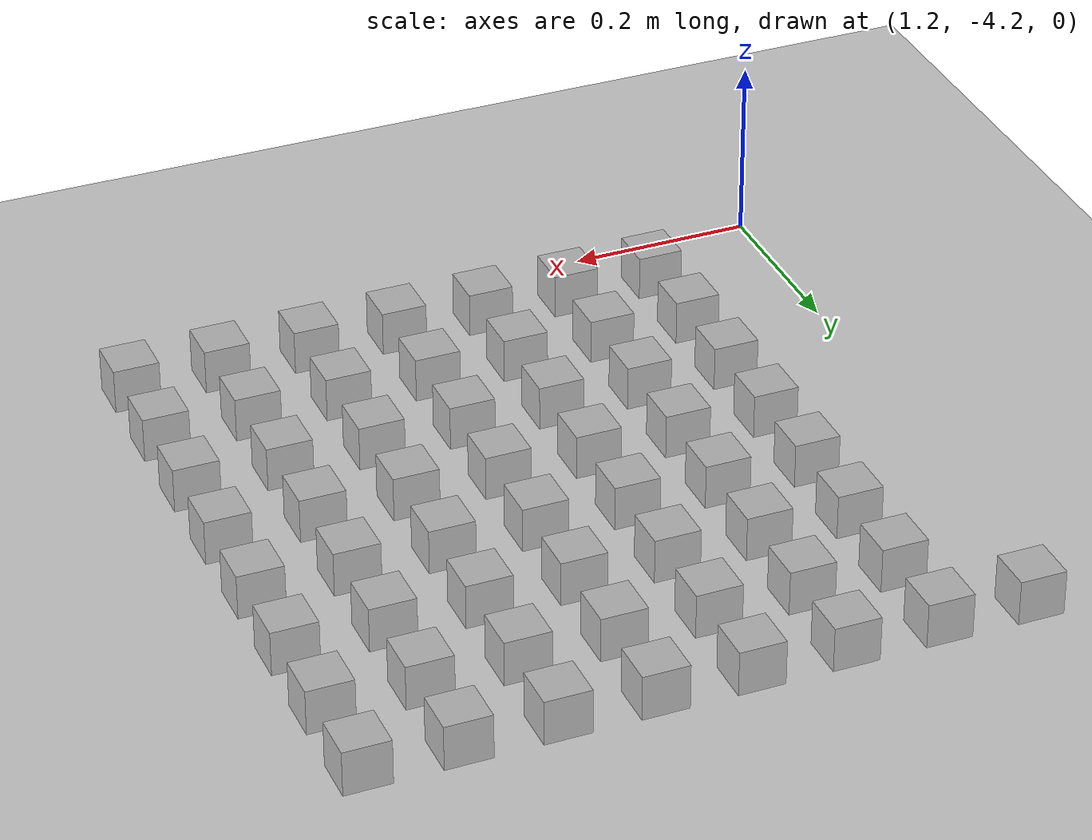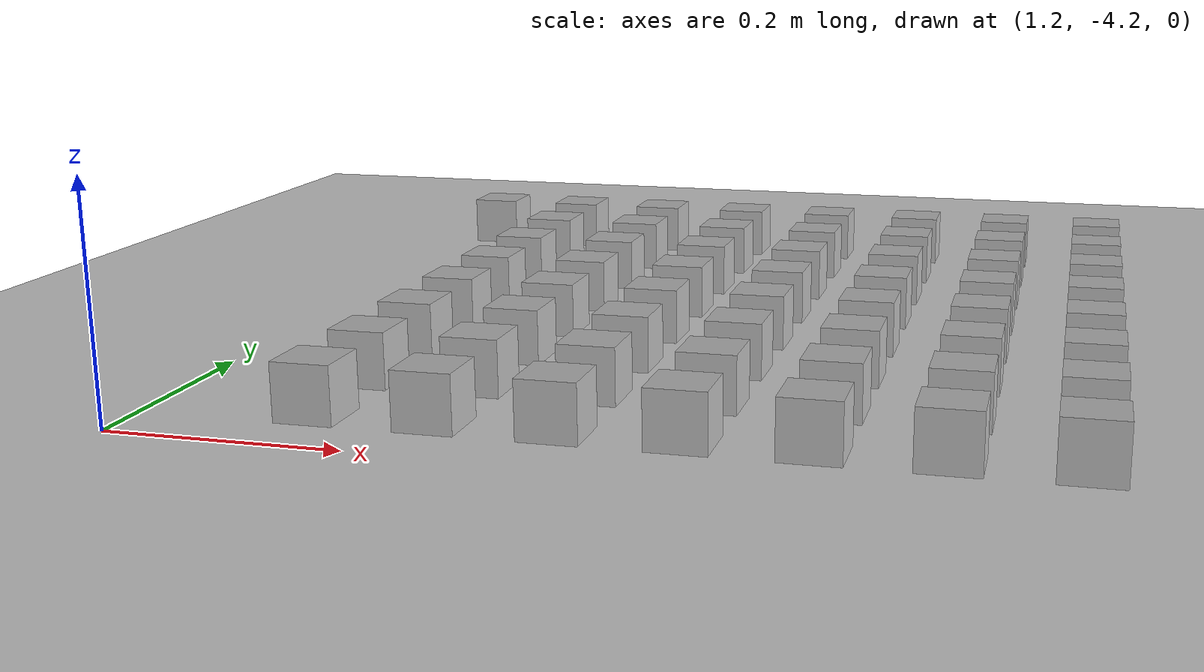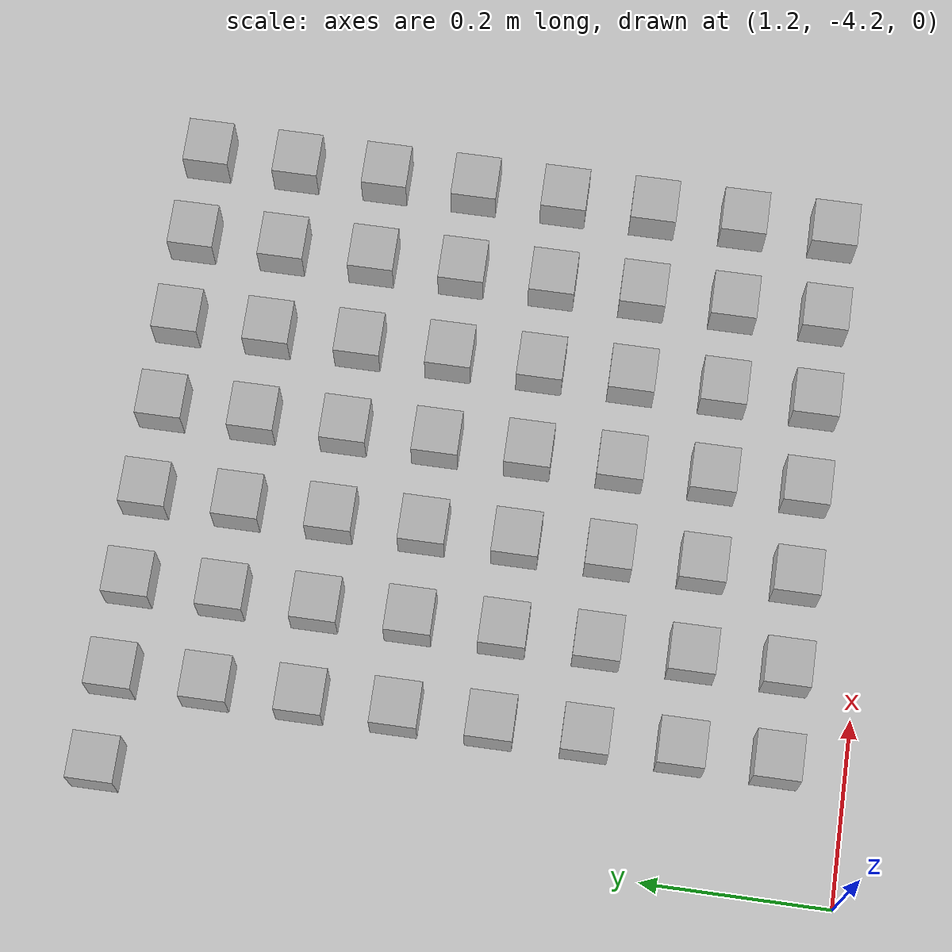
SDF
<sdf version="1.6">
 <world name="default">
  <model name="ground_plane">
   <static>1</static>
   <link name="link">
    <collision name="collision">
     <geometry><plane><normal>0 0 1</normal><size>100 100</size></plane></geometry>
     <surface><friction><ode><mu>100</mu><mu2>50</mu2></ode></friction></surface>
    </collision>
    <visual name="visual">
     <cast_shadows>0</cast_shadows>
     <geometry><plane><normal>0 0 1</normal><size>100 100</size></plane></geometry>
     <material>
      <script><uri>file://media/materials/scripts/gazebo.material</uri><name>Gazebo/Grey</name></script>
     </material>
    </visual>
   </link>
  </model>
  <model name="at193">
   <static>0</static>
   <link name="link">
    <inertial>
     <mass>0.01</mass>
     <inertia><ixx>4e-05</ixx><ixy>0</ixy><ixz>0</ixz><iyy>4e-05</iyy><iyz>0</iyz><izz>4e-05</izz></inertia>
    </inertial>
    <visual name="visual">
     <geometry><box><size>0.05 0.05 0.05</size></box></geometry>
     <material>
      <script>
       <uri>model://at0/materials/scripts</uri>
       <uri>model://at0/materials/textures</uri>
       <name>at0/Diffuse</name>
      </script>
     </material>
    </visual>
    <collision name="collision">
     <geometry><box><size>0.05 0.05 0.05</size></box></geometry>
     <surface><friction><ode><mu>0.8</mu><mu2>0.7</mu2></ode></friction></surface>
    </collision>
   </link>
   <pose>1.34324 -4.12605 0.025 0 -0 0</pose>
  </model>
  <model name="at194">
   <static>0</static>
   <link name="link">
    <inertial>
     <mass>0.01</mass>
     <inertia><ixx>4e-05</ixx><ixy>0</ixy><ixz>0</ixz><iyy>4e-05</iyy><iyz>0</iyz><izz>4e-05</izz></inertia>
    </inertial>
    <visual name="visual">
     <geometry><box><size>0.05 0.05 0.05</size></box></geometry>
     <material>
      <script>
       <uri>model://at0/materials/scripts</uri>
       <uri>model://at0/materials/textures</uri>
       <name>at0/Diffuse</name>
      </script>
     </material>
    </visual>
    <collision name="collision">
     <geometry><box><size>0.05 0.05 0.05</size></box></geometry>
     <surface><friction><ode><mu>0.8</mu><mu2>0.7</mu2></ode></friction></surface>
    </collision>
   </link>
   <pose>1.44324 -4.12605 0.025 0 -0 0</pose>
  </model>
  <model name="at195">
   <static>0</static>
   <link name="link">
    <inertial>
     <mass>0.01</mass>
     <inertia><ixx>4e-05</ixx><ixy>0</ixy><ixz>0</ixz><iyy>4e-05</iyy><iyz>0</iyz><izz>4e-05</izz></inertia>
    </inertial>
    <visual name="visual">
     <geometry><box><size>0.05 0.05 0.05</size></box></geometry>
     <material>
      <script>
       <uri>model://at0/materials/scripts</uri>
       <uri>model://at0/materials/textures</uri>
       <name>at0/Diffuse</name>
      </script>
     </material>
    </visual>
    <collision name="collision">
     <geometry><box><size>0.05 0.05 0.05</size></box></geometry>
     <surface><friction><ode><mu>0.8</mu><mu2>0.7</mu2></ode></friction></surface>
    </collision>
   </link>
   <pose>1.54324 -4.12605 0.025 0 -0 0</pose>
  </model>
  <model name="at196">
   <static>0</static>
   <link name="link">
    <inertial>
     <mass>0.01</mass>
     <inertia><ixx>4e-05</ixx><ixy>0</ixy><ixz>0</ixz><iyy>4e-05</iyy><iyz>0</iyz><izz>4e-05</izz></inertia>
    </inertial>
    <visual name="visual">
     <geometry><box><size>0.05 0.05 0.05</size></box></geometry>
     <material>
      <script>
       <uri>model://at0/materials/scripts</uri>
       <uri>model://at0/materials/textures</uri>
       <name>at0/Diffuse</name>
      </script>
     </material>
    </visual>
    <collision name="collision">
     <geometry><box><size>0.05 0.05 0.05</size></box></geometry>
     <surface><friction><ode><mu>0.8</mu><mu2>0.7</mu2></ode></friction></surface>
    </collision>
   </link>
   <pose>1.64324 -4.12605 0.025 0 -0 0</pose>
  </model>
  <model name="at197">
   <static>0</static>
   <link name="link">
    <inertial>
     <mass>0.01</mass>
     <inertia><ixx>4e-05</ixx><ixy>0</ixy><ixz>0</ixz><iyy>4e-05</iyy><iyz>0</iyz><izz>4e-05</izz></inertia>
    </inertial>
    <visual name="visual">
     <geometry><box><size>0.05 0.05 0.05</size></box></geometry>
     <material>
      <script>
       <uri>model://at0/materials/scripts</uri>
       <uri>model://at0/materials/textures</uri>
       <name>at0/Diffuse</name>
      </script>
     </material>
    </visual>
    <collision name="collision">
     <geometry><box><size>0.05 0.05 0.05</size></box></geometry>
     <surface><friction><ode><mu>0.8</mu><mu2>0.7</mu2></ode></friction></surface>
    </collision>
   </link>
   <pose>1.74324 -4.12605 0.025 0 -0 0</pose>
  </model>
  <model name="at198">
   <static>0</static>
   <link name="link">
    <inertial>
     <mass>0.01</mass>
     <inertia><ixx>4e-05</ixx><ixy>0</ixy><ixz>0</ixz><iyy>4e-05</iyy><iyz>0</iyz><izz>4e-05</izz></inertia>
    </inertial>
    <visual name="visual">
     <geometry><box><size>0.05 0.05 0.05</size></box></geometry>
     <material>
      <script>
       <uri>model://at0/materials/scripts</uri>
       <uri>model://at0/materials/textures</uri>
       <name>at0/Diffuse</name>
      </script>
     </material>
    </visual>
    <collision name="collision">
     <geometry><box><size>0.05 0.05 0.05</size></box></geometry>
     <surface><friction><ode><mu>0.8</mu><mu2>0.7</mu2></ode></friction></surface>
    </collision>
   </link>
   <pose>1.84324 -4.12605 0.025 0 -0 0</pose>
  </model>
  <model name="at199">
   <static>0</static>
   <link name="link">
    <inertial>
     <mass>0.01</mass>
     <inertia><ixx>4e-05</ixx><ixy>0</ixy><ixz>0</ixz><iyy>4e-05</iyy><iyz>0</iyz><izz>4e-05</izz></inertia>
    </inertial>
    <visual name="visual">
     <geometry><box><size>0.05 0.05 0.05</size></box></geometry>
     <material>
      <script>
       <uri>model://at0/materials/scripts</uri>
       <uri>model://at0/materials/textures</uri>
       <name>at0/Diffuse</name>
      </script>
     </material>
    </visual>
    <collision name="collision">
     <geometry><box><size>0.05 0.05 0.05</size></box></geometry>
     <surface><friction><ode><mu>0.8</mu><mu2>0.7</mu2></ode></friction></surface>
    </collision>
   </link>
   <pose>1.94324 -4.12605 0.025 0 -0 0</pose>
  </model>
  <model name="at201">
   <static>0</static>
   <link name="link">
    <inertial>
     <mass>0.01</mass>
     <inertia><ixx>4e-05</ixx><ixy>0</ixy><ixz>0</ixz><iyy>4e-05</iyy><iyz>0</iyz><izz>4e-05</izz></inertia>
    </inertial>
    <visual name="visual">
     <geometry><box><size>0.05 0.05 0.05</size></box></geometry>
     <material>
      <script>
       <uri>model://at0/materials/scripts</uri>
       <uri>model://at0/materials/textures</uri>
       <name>at0/Diffuse</name>
      </script>
     </material>
    </visual>
    <collision name="collision">
     <geometry><box><size>0.05 0.05 0.05</size></box></geometry>
     <surface><friction><ode><mu>0.8</mu><mu2>0.7</mu2></ode></friction></surface>
    </collision>
   </link>
   <pose>1.34324 -4.02605 0.025 0 -0 0</pose>
  </model>
  <model name="at202">
   <static>0</static>
   <link name="link">
    <inertial>
     <mass>0.01</mass>
     <inertia><ixx>4e-05</ixx><ixy>0</ixy><ixz>0</ixz><iyy>4e-05</iyy><iyz>0</iyz><izz>4e-05</izz></inertia>
    </inertial>
    <visual name="visual">
     <geometry><box><size>0.05 0.05 0.05</size></box></geometry>
     <material>
      <script>
       <uri>model://at0/materials/scripts</uri>
       <uri>model://at0/materials/textures</uri>
       <name>at0/Diffuse</name>
      </script>
     </material>
    </visual>
    <collision name="collision">
     <geometry><box><size>0.05 0.05 0.05</size></box></geometry>
     <surface><friction><ode><mu>0.8</mu><mu2>0.7</mu2></ode></friction></surface>
    </collision>
   </link>
   <pose>1.44324 -4.02605 0.025 0 -0 0</pose>
  </model>
  <model name="at203">
   <static>0</static>
   <link name="link">
    <inertial>
     <mass>0.01</mass>
     <inertia><ixx>4e-05</ixx><ixy>0</ixy><ixz>0</ixz><iyy>4e-05</iyy><iyz>0</iyz><izz>4e-05</izz></inertia>
    </inertial>
    <visual name="visual">
     <geometry><box><size>0.05 0.05 0.05</size></box></geometry>
     <material>
      <script>
       <uri>model://at0/materials/scripts</uri>
       <uri>model://at0/materials/textures</uri>
       <name>at0/Diffuse</name>
      </script>
     </material>
    </visual>
    <collision name="collision">
     <geometry><box><size>0.05 0.05 0.05</size></box></geometry>
     <surface><friction><ode><mu>0.8</mu><mu2>0.7</mu2></ode></friction></surface>
    </collision>
   </link>
   <pose>1.54324 -4.02605 0.025 0 -0 0</pose>
  </model>
  <model name="at204">
   <static>0</static>
   <link name="link">
    <inertial>
     <mass>0.01</mass>
     <inertia><ixx>4e-05</ixx><ixy>0</ixy><ixz>0</ixz><iyy>4e-05</iyy><iyz>0</iyz><izz>4e-05</izz></inertia>
    </inertial>
    <visual name="visual">
     <geometry><box><size>0.05 0.05 0.05</size></box></geometry>
     <material>
      <script>
       <uri>model://at0/materials/scripts</uri>
       <uri>model://at0/materials/textures</uri>
       <name>at0/Diffuse</name>
      </script>
     </material>
    </visual>
    <collision name="collision">
     <geometry><box><size>0.05 0.05 0.05</size></box></geometry>
     <surface><friction><ode><mu>0.8</mu><mu2>0.7</mu2></ode></friction></surface>
    </collision>
   </link>
   <pose>1.64324 -4.02605 0.025 0 -0 0</pose>
  </model>
  <model name="at205">
   <static>0</static>
   <link name="link">
    <inertial>
     <mass>0.01</mass>
     <inertia><ixx>4e-05</ixx><ixy>0</ixy><ixz>0</ixz><iyy>4e-05</iyy><iyz>0</iyz><izz>4e-05</izz></inertia>
    </inertial>
    <visual name="visual">
     <geometry><box><size>0.05 0.05 0.05</size></box></geometry>
     <material>
      <script>
       <uri>model://at0/materials/scripts</uri>
       <uri>model://at0/materials/textures</uri>
       <name>at0/Diffuse</name>
      </script>
     </material>
    </visual>
    <collision name="collision">
     <geometry><box><size>0.05 0.05 0.05</size></box></geometry>
     <surface><friction><ode><mu>0.8</mu><mu2>0.7</mu2></ode></friction></surface>
    </collision>
   </link>
   <pose>1.74324 -4.02605 0.025 0 -0 0</pose>
  </model>
  <model name="at206">
   <static>0</static>
   <link name="link">
    <inertial>
     <mass>0.01</mass>
     <inertia><ixx>4e-05</ixx><ixy>0</ixy><ixz>0</ixz><iyy>4e-05</iyy><iyz>0</iyz><izz>4e-05</izz></inertia>
    </inertial>
    <visual name="visual">
     <geometry><box><size>0.05 0.05 0.05</size></box></geometry>
     <material>
      <script>
       <uri>model://at0/materials/scripts</uri>
       <uri>model://at0/materials/textures</uri>
       <name>at0/Diffuse</name>
      </script>
     </material>
    </visual>
    <collision name="collision">
     <geometry><box><size>0.05 0.05 0.05</size></box></geometry>
     <surface><friction><ode><mu>0.8</mu><mu2>0.7</mu2></ode></friction></surface>
    </collision>
   </link>
   <pose>1.84324 -4.02605 0.025 0 -0 0</pose>
  </model>
  <model name="at207">
   <static>0</static>
   <link name="link">
    <inertial>
     <mass>0.01</mass>
     <inertia><ixx>4e-05</ixx><ixy>0</ixy><ixz>0</ixz><iyy>4e-05</iyy><iyz>0</iyz><izz>4e-05</izz></inertia>
    </inertial>
    <visual name="visual">
     <geometry><box><size>0.05 0.05 0.05</size></box></geometry>
     <material>
      <script>
       <uri>model://at0/materials/scripts</uri>
       <uri>model://at0/materials/textures</uri>
       <name>at0/Diffuse</name>
      </script>
     </material>
    </visual>
    <collision name="collision">
     <geometry><box><size>0.05 0.05 0.05</size></box></geometry>
     <surface><friction><ode><mu>0.8</mu><mu2>0.7</mu2></ode></friction></surface>
    </collision>
   </link>
   <pose>1.94324 -4.02605 0.025 0 -0 0</pose>
  </model>
  <model name="at209">
   <static>0</static>
   <link name="link">
    <inertial>
     <mass>0.01</mass>
     <inertia><ixx>4e-05</ixx><ixy>0</ixy><ixz>0</ixz><iyy>4e-05</iyy><iyz>0</iyz><izz>4e-05</izz></inertia>
    </inertial>
    <visual name="visual">
     <geometry><box><size>0.05 0.05 0.05</size></box></geometry>
     <material>
      <script>
       <uri>model://at0/materials/scripts</uri>
       <uri>model://at0/materials/textures</uri>
       <name>at0/Diffuse</name>
      </script>
     </material>
    </visual>
    <collision name="collision">
     <geometry><box><size>0.05 0.05 0.05</size></box></geometry>
     <surface><friction><ode><mu>0.8</mu><mu2>0.7</mu2></ode></friction></surface>
    </collision>
   </link>
   <pose>1.34324 -3.92605 0.025 0 -0 0</pose>
  </model>
  <model name="at210">
   <static>0</static>
   <link name="link">
    <inertial>
     <mass>0.01</mass>
     <inertia><ixx>4e-05</ixx><ixy>0</ixy><ixz>0</ixz><iyy>4e-05</iyy><iyz>0</iyz><izz>4e-05</izz></inertia>
    </inertial>
    <visual name="visual">
     <geometry><box><size>0.05 0.05 0.05</size></box></geometry>
     <material>
      <script>
       <uri>model://at0/materials/scripts</uri>
       <uri>model://at0/materials/textures</uri>
       <name>at0/Diffuse</name>
      </script>
     </material>
    </visual>
    <collision name="collision">
     <geometry><box><size>0.05 0.05 0.05</size></box></geometry>
     <surface><friction><ode><mu>0.8</mu><mu2>0.7</mu2></ode></friction></surface>
    </collision>
   </link>
   <pose>1.44324 -3.92605 0.025 0 -0 0</pose>
  </model>
  <model name="at211">
   <static>0</static>
   <link name="link">
    <inertial>
     <mass>0.01</mass>
     <inertia><ixx>4e-05</ixx><ixy>0</ixy><ixz>0</ixz><iyy>4e-05</iyy><iyz>0</iyz><izz>4e-05</izz></inertia>
    </inertial>
    <visual name="visual">
     <geometry><box><size>0.05 0.05 0.05</size></box></geometry>
     <material>
      <script>
       <uri>model://at0/materials/scripts</uri>
       <uri>model://at0/materials/textures</uri>
       <name>at0/Diffuse</name>
      </script>
     </material>
    </visual>
    <collision name="collision">
     <geometry><box><size>0.05 0.05 0.05</size></box></geometry>
     <surface><friction><ode><mu>0.8</mu><mu2>0.7</mu2></ode></friction></surface>
    </collision>
   </link>
   <pose>1.54324 -3.92605 0.025 0 -0 0</pose>
  </model>
  <model name="at212">
   <static>0</static>
   <link name="link">
    <inertial>
     <mass>0.01</mass>
     <inertia><ixx>4e-05</ixx><ixy>0</ixy><ixz>0</ixz><iyy>4e-05</iyy><iyz>0</iyz><izz>4e-05</izz></inertia>
    </inertial>
    <visual name="visual">
     <geometry><box><size>0.05 0.05 0.05</size></box></geometry>
     <material>
      <script>
       <uri>model://at0/materials/scripts</uri>
       <uri>model://at0/materials/textures</uri>
       <name>at0/Diffuse</name>
      </script>
     </material>
    </visual>
    <collision name="collision">
     <geometry><box><size>0.05 0.05 0.05</size></box></geometry>
     <surface><friction><ode><mu>0.8</mu><mu2>0.7</mu2></ode></friction></surface>
    </collision>
   </link>
   <pose>1.64324 -3.92605 0.025 0 -0 0</pose>
  </model>
  <model name="at213">
   <static>0</static>
   <link name="link">
    <inertial>
     <mass>0.01</mass>
     <inertia><ixx>4e-05</ixx><ixy>0</ixy><ixz>0</ixz><iyy>4e-05</iyy><iyz>0</iyz><izz>4e-05</izz></inertia>
    </inertial>
    <visual name="visual">
     <geometry><box><size>0.05 0.05 0.05</size></box></geometry>
     <material>
      <script>
       <uri>model://at0/materials/scripts</uri>
       <uri>model://at0/materials/textures</uri>
       <name>at0/Diffuse</name>
      </script>
     </material>
    </visual>
    <collision name="collision">
     <geometry><box><size>0.05 0.05 0.05</size></box></geometry>
     <surface><friction><ode><mu>0.8</mu><mu2>0.7</mu2></ode></friction></surface>
    </collision>
   </link>
   <pose>1.74324 -3.92605 0.025 0 -0 0</pose>
  </model>
  <model name="at214">
   <static>0</static>
   <link name="link">
    <inertial>
     <mass>0.01</mass>
     <inertia><ixx>4e-05</ixx><ixy>0</ixy><ixz>0</ixz><iyy>4e-05</iyy><iyz>0</iyz><izz>4e-05</izz></inertia>
    </inertial>
    <visual name="visual">
     <geometry><box><size>0.05 0.05 0.05</size></box></geometry>
     <material>
      <script>
       <uri>model://at0/materials/scripts</uri>
       <uri>model://at0/materials/textures</uri>
       <name>at0/Diffuse</name>
      </script>
     </material>
    </visual>
    <collision name="collision">
     <geometry><box><size>0.05 0.05 0.05</size></box></geometry>
     <surface><friction><ode><mu>0.8</mu><mu2>0.7</mu2></ode></friction></surface>
    </collision>
   </link>
   <pose>1.84324 -3.92605 0.025 0 -0 0</pose>
  </model>
  <model name="at215">
   <static>0</static>
   <link name="link">
    <inertial>
     <mass>0.01</mass>
     <inertia><ixx>4e-05</ixx><ixy>0</ixy><ixz>0</ixz><iyy>4e-05</iyy><iyz>0</iyz><izz>4e-05</izz></inertia>
    </inertial>
    <visual name="visual">
     <geometry><box><size>0.05 0.05 0.05</size></box></geometry>
     <material>
      <script>
       <uri>model://at0/materials/scripts</uri>
       <uri>model://at0/materials/textures</uri>
       <name>at0/Diffuse</name>
      </script>
     </material>
    </visual>
    <collision name="collision">
     <geometry><box><size>0.05 0.05 0.05</size></box></geometry>
     <surface><friction><ode><mu>0.8</mu><mu2>0.7</mu2></ode></friction></surface>
    </collision>
   </link>
   <pose>1.94324 -3.92605 0.025 0 -0 0</pose>
  </model>
  <model name="at217">
   <static>0</static>
   <link name="link">
    <inertial>
     <mass>0.01</mass>
     <inertia><ixx>4e-05</ixx><ixy>0</ixy><ixz>0</ixz><iyy>4e-05</iyy><iyz>0</iyz><izz>4e-05</izz></inertia>
    </inertial>
    <visual name="visual">
     <geometry><box><size>0.05 0.05 0.05</size></box></geometry>
     <material>
      <script>
       <uri>model://at0/materials/scripts</uri>
       <uri>model://at0/materials/textures</uri>
       <name>at0/Diffuse</name>
      </script>
     </material>
    </visual>
    <collision name="collision">
     <geometry><box><size>0.05 0.05 0.05</size></box></geometry>
     <surface><friction><ode><mu>0.8</mu><mu2>0.7</mu2></ode></friction></surface>
    </collision>
   </link>
   <pose>1.34324 -3.82605 0.025 0 -0 0</pose>
  </model>
  <model name="at218">
   <static>0</static>
   <link name="link">
    <inertial>
     <mass>0.01</mass>
     <inertia><ixx>4e-05</ixx><ixy>0</ixy><ixz>0</ixz><iyy>4e-05</iyy><iyz>0</iyz><izz>4e-05</izz></inertia>
    </inertial>
    <visual name="visual">
     <geometry><box><size>0.05 0.05 0.05</size></box></geometry>
     <material>
      <script>
       <uri>model://at0/materials/scripts</uri>
       <uri>model://at0/materials/textures</uri>
       <name>at0/Diffuse</name>
      </script>
     </material>
    </visual>
    <collision name="collision">
     <geometry><box><size>0.05 0.05 0.05</size></box></geometry>
     <surface><friction><ode><mu>0.8</mu><mu2>0.7</mu2></ode></friction></surface>
    </collision>
   </link>
   <pose>1.44324 -3.82605 0.025 0 -0 0</pose>
  </model>
  <model name="at219">
   <static>0</static>
   <link name="link">
    <inertial>
     <mass>0.01</mass>
     <inertia><ixx>4e-05</ixx><ixy>0</ixy><ixz>0</ixz><iyy>4e-05</iyy><iyz>0</iyz><izz>4e-05</izz></inertia>
    </inertial>
    <visual name="visual">
     <geometry><box><size>0.05 0.05 0.05</size></box></geometry>
     <material>
      <script>
       <uri>model://at0/materials/scripts</uri>
       <uri>model://at0/materials/textures</uri>
       <name>at0/Diffuse</name>
      </script>
     </material>
    </visual>
    <collision name="collision">
     <geometry><box><size>0.05 0.05 0.05</size></box></geometry>
     <surface><friction><ode><mu>0.8</mu><mu2>0.7</mu2></ode></friction></surface>
    </collision>
   </link>
   <pose>1.54324 -3.82605 0.025 0 -0 0</pose>
  </model>
  <model name="at220">
   <static>0</static>
   <link name="link">
    <inertial>
     <mass>0.01</mass>
     <inertia><ixx>4e-05</ixx><ixy>0</ixy><ixz>0</ixz><iyy>4e-05</iyy><iyz>0</iyz><izz>4e-05</izz></inertia>
    </inertial>
    <visual name="visual">
     <geometry><box><size>0.05 0.05 0.05</size></box></geometry>
     <material>
      <script>
       <uri>model://at0/materials/scripts</uri>
       <uri>model://at0/materials/textures</uri>
       <name>at0/Diffuse</name>
      </script>
     </material>
    </visual>
    <collision name="collision">
     <geometry><box><size>0.05 0.05 0.05</size></box></geometry>
     <surface><friction><ode><mu>0.8</mu><mu2>0.7</mu2></ode></friction></surface>
    </collision>
   </link>
   <pose>1.64324 -3.82605 0.025 0 -0 0</pose>
  </model>
  <model name="at221">
   <static>0</static>
   <link name="link">
    <inertial>
     <mass>0.01</mass>
     <inertia><ixx>4e-05</ixx><ixy>0</ixy><ixz>0</ixz><iyy>4e-05</iyy><iyz>0</iyz><izz>4e-05</izz></inertia>
    </inertial>
    <visual name="visual">
     <geometry><box><size>0.05 0.05 0.05</size></box></geometry>
     <material>
      <script>
       <uri>model://at0/materials/scripts</uri>
       <uri>model://at0/materials/textures</uri>
       <name>at0/Diffuse</name>
      </script>
     </material>
    </visual>
    <collision name="collision">
     <geometry><box><size>0.05 0.05 0.05</size></box></geometry>
     <surface><friction><ode><mu>0.8</mu><mu2>0.7</mu2></ode></friction></surface>
    </collision>
   </link>
   <pose>1.74324 -3.82605 0.025 0 -0 0</pose>
  </model>
  <model name="at222">
   <static>0</static>
   <link name="link">
    <inertial>
     <mass>0.01</mass>
     <inertia><ixx>4e-05</ixx><ixy>0</ixy><ixz>0</ixz><iyy>4e-05</iyy><iyz>0</iyz><izz>4e-05</izz></inertia>
    </inertial>
    <visual name="visual">
     <geometry><box><size>0.05 0.05 0.05</size></box></geometry>
     <material>
      <script>
       <uri>model://at0/materials/scripts</uri>
       <uri>model://at0/materials/textures</uri>
       <name>at0/Diffuse</name>
      </script>
     </material>
    </visual>
    <collision name="collision">
     <geometry><box><size>0.05 0.05 0.05</size></box></geometry>
     <surface><friction><ode><mu>0.8</mu><mu2>0.7</mu2></ode></friction></surface>
    </collision>
   </link>
   <pose>1.84324 -3.82605 0.025 0 -0 0</pose>
  </model>
  <model name="at223">
   <static>0</static>
   <link name="link">
    <inertial>
     <mass>0.01</mass>
     <inertia><ixx>4e-05</ixx><ixy>0</ixy><ixz>0</ixz><iyy>4e-05</iyy><iyz>0</iyz><izz>4e-05</izz></inertia>
    </inertial>
    <visual name="visual">
     <geometry><box><size>0.05 0.05 0.05</size></box></geometry>
     <material>
      <script>
       <uri>model://at0/materials/scripts</uri>
       <uri>model://at0/materials/textures</uri>
       <name>at0/Diffuse</name>
      </script>
     </material>
    </visual>
    <collision name="collision">
     <geometry><box><size>0.05 0.05 0.05</size></box></geometry>
     <surface><friction><ode><mu>0.8</mu><mu2>0.7</mu2></ode></friction></surface>
    </collision>
   </link>
   <pose>1.94324 -3.82605 0.025 0 -0 0</pose>
  </model>
  <model name="at225">
   <static>0</static>
   <link name="link">
    <inertial>
     <mass>0.01</mass>
     <inertia><ixx>4e-05</ixx><ixy>0</ixy><ixz>0</ixz><iyy>4e-05</iyy><iyz>0</iyz><izz>4e-05</izz></inertia>
    </inertial>
    <visual name="visual">
     <geometry><box><size>0.05 0.05 0.05</size></box></geometry>
     <material>
      <script>
       <uri>model://at0/materials/scripts</uri>
       <uri>model://at0/materials/textures</uri>
       <name>at0/Diffuse</name>
      </script>
     </material>
    </visual>
    <collision name="collision">
     <geometry><box><size>0.05 0.05 0.05</size></box></geometry>
     <surface><friction><ode><mu>0.8</mu><mu2>0.7</mu2></ode></friction></surface>
    </collision>
   </link>
   <pose>1.34324 -3.72605 0.025 0 -0 0</pose>
  </model>
  <model name="at226">
   <static>0</static>
   <link name="link">
    <inertial>
     <mass>0.01</mass>
     <inertia><ixx>4e-05</ixx><ixy>0</ixy><ixz>0</ixz><iyy>4e-05</iyy><iyz>0</iyz><izz>4e-05</izz></inertia>
    </inertial>
    <visual name="visual">
     <geometry><box><size>0.05 0.05 0.05</size></box></geometry>
     <material>
      <script>
       <uri>model://at0/materials/scripts</uri>
       <uri>model://at0/materials/textures</uri>
       <name>at0/Diffuse</name>
      </script>
     </material>
    </visual>
    <collision name="collision">
     <geometry><box><size>0.05 0.05 0.05</size></box></geometry>
     <surface><friction><ode><mu>0.8</mu><mu2>0.7</mu2></ode></friction></surface>
    </collision>
   </link>
   <pose>1.44324 -3.72605 0.025 0 -0 0</pose>
  </model>
  <model name="at227">
   <static>0</static>
   <link name="link">
    <inertial>
     <mass>0.01</mass>
     <inertia><ixx>4e-05</ixx><ixy>0</ixy><ixz>0</ixz><iyy>4e-05</iyy><iyz>0</iyz><izz>4e-05</izz></inertia>
    </inertial>
    <visual name="visual">
     <geometry><box><size>0.05 0.05 0.05</size></box></geometry>
     <material>
      <script>
       <uri>model://at0/materials/scripts</uri>
       <uri>model://at0/materials/textures</uri>
       <name>at0/Diffuse</name>
      </script>
     </material>
    </visual>
    <collision name="collision">
     <geometry><box><size>0.05 0.05 0.05</size></box></geometry>
     <surface><friction><ode><mu>0.8</mu><mu2>0.7</mu2></ode></friction></surface>
    </collision>
   </link>
   <pose>1.54324 -3.72605 0.025 0 -0 0</pose>
  </model>
  <model name="at228">
   <static>0</static>
   <link name="link">
    <inertial>
     <mass>0.01</mass>
     <inertia><ixx>4e-05</ixx><ixy>0</ixy><ixz>0</ixz><iyy>4e-05</iyy><iyz>0</iyz><izz>4e-05</izz></inertia>
    </inertial>
    <visual name="visual">
     <geometry><box><size>0.05 0.05 0.05</size></box></geometry>
     <material>
      <script>
       <uri>model://at0/materials/scripts</uri>
       <uri>model://at0/materials/textures</uri>
       <name>at0/Diffuse</name>
      </script>
     </material>
    </visual>
    <collision name="collision">
     <geometry><box><size>0.05 0.05 0.05</size></box></geometry>
     <surface><friction><ode><mu>0.8</mu><mu2>0.7</mu2></ode></friction></surface>
    </collision>
   </link>
   <pose>1.64324 -3.72605 0.025 0 -0 0</pose>
  </model>
  <model name="at229">
   <static>0</static>
   <link name="link">
    <inertial>
     <mass>0.01</mass>
     <inertia><ixx>4e-05</ixx><ixy>0</ixy><ixz>0</ixz><iyy>4e-05</iyy><iyz>0</iyz><izz>4e-05</izz></inertia>
    </inertial>
    <visual name="visual">
     <geometry><box><size>0.05 0.05 0.05</size></box></geometry>
     <material>
      <script>
       <uri>model://at0/materials/scripts</uri>
       <uri>model://at0/materials/textures</uri>
       <name>at0/Diffuse</name>
      </script>
     </material>
    </visual>
    <collision name="collision">
     <geometry><box><size>0.05 0.05 0.05</size></box></geometry>
     <surface><friction><ode><mu>0.8</mu><mu2>0.7</mu2></ode></friction></surface>
    </collision>
   </link>
   <pose>1.74324 -3.72605 0.025 0 -0 0</pose>
  </model>
  <model name="at230">
   <static>0</static>
   <link name="link">
    <inertial>
     <mass>0.01</mass>
     <inertia><ixx>4e-05</ixx><ixy>0</ixy><ixz>0</ixz><iyy>4e-05</iyy><iyz>0</iyz><izz>4e-05</izz></inertia>
    </inertial>
    <visual name="visual">
     <geometry><box><size>0.05 0.05 0.05</size></box></geometry>
     <material>
      <script>
       <uri>model://at0/materials/scripts</uri>
       <uri>model://at0/materials/textures</uri>
       <name>at0/Diffuse</name>
      </script>
     </material>
    </visual>
    <collision name="collision">
     <geometry><box><size>0.05 0.05 0.05</size></box></geometry>
     <surface><friction><ode><mu>0.8</mu><mu2>0.7</mu2></ode></friction></surface>
    </collision>
   </link>
   <pose>1.84324 -3.72605 0.025 0 -0 0</pose>
  </model>
  <model name="at231">
   <static>0</static>
   <link name="link">
    <inertial>
     <mass>0.01</mass>
     <inertia><ixx>4e-05</ixx><ixy>0</ixy><ixz>0</ixz><iyy>4e-05</iyy><iyz>0</iyz><izz>4e-05</izz></inertia>
    </inertial>
    <visual name="visual">
     <geometry><box><size>0.05 0.05 0.05</size></box></geometry>
     <material>
      <script>
       <uri>model://at0/materials/scripts</uri>
       <uri>model://at0/materials/textures</uri>
       <name>at0/Diffuse</name>
      </script>
     </material>
    </visual>
    <collision name="collision">
     <geometry><box><size>0.05 0.05 0.05</size></box></geometry>
     <surface><friction><ode><mu>0.8</mu><mu2>0.7</mu2></ode></friction></surface>
    </collision>
   </link>
   <pose>1.94324 -3.72605 0.025 0 -0 0</pose>
  </model>
  <model name="at233">
   <static>0</static>
   <link name="link">
    <inertial>
     <mass>0.01</mass>
     <inertia><ixx>4e-05</ixx><ixy>0</ixy><ixz>0</ixz><iyy>4e-05</iyy><iyz>0</iyz><izz>4e-05</izz></inertia>
    </inertial>
    <visual name="visual">
     <geometry><box><size>0.05 0.05 0.05</size></box></geometry>
     <material>
      <script>
       <uri>model://at0/materials/scripts</uri>
       <uri>model://at0/materials/textures</uri>
       <name>at0/Diffuse</name>
      </script>
     </material>
    </visual>
    <collision name="collision">
     <geometry><box><size>0.05 0.05 0.05</size></box></geometry>
     <surface><friction><ode><mu>0.8</mu><mu2>0.7</mu2></ode></friction></surface>
    </collision>
   </link>
   <pose>1.34324 -3.62605 0.025 0 -0 0</pose>
  </model>
  <model name="at234">
   <static>0</static>
   <link name="link">
    <inertial>
     <mass>0.01</mass>
     <inertia><ixx>4e-05</ixx><ixy>0</ixy><ixz>0</ixz><iyy>4e-05</iyy><iyz>0</iyz><izz>4e-05</izz></inertia>
    </inertial>
    <visual name="visual">
     <geometry><box><size>0.05 0.05 0.05</size></box></geometry>
     <material>
      <script>
       <uri>model://at0/materials/scripts</uri>
       <uri>model://at0/materials/textures</uri>
       <name>at0/Diffuse</name>
      </script>
     </material>
    </visual>
    <collision name="collision">
     <geometry><box><size>0.05 0.05 0.05</size></box></geometry>
     <surface><friction><ode><mu>0.8</mu><mu2>0.7</mu2></ode></friction></surface>
    </collision>
   </link>
   <pose>1.44324 -3.62605 0.025 0 -0 0</pose>
  </model>
  <model name="at235">
   <static>0</static>
   <link name="link">
    <inertial>
     <mass>0.01</mass>
     <inertia><ixx>4e-05</ixx><ixy>0</ixy><ixz>0</ixz><iyy>4e-05</iyy><iyz>0</iyz><izz>4e-05</izz></inertia>
    </inertial>
    <visual name="visual">
     <geometry><box><size>0.05 0.05 0.05</size></box></geometry>
     <material>
      <script>
       <uri>model://at0/materials/scripts</uri>
       <uri>model://at0/materials/textures</uri>
       <name>at0/Diffuse</name>
      </script>
     </material>
    </visual>
    <collision name="collision">
     <geometry><box><size>0.05 0.05 0.05</size></box></geometry>
     <surface><friction><ode><mu>0.8</mu><mu2>0.7</mu2></ode></friction></surface>
    </collision>
   </link>
   <pose>1.54324 -3.62605 0.025 0 -0 0</pose>
  </model>
  <model name="at236">
   <static>0</static>
   <link name="link">
    <inertial>
     <mass>0.01</mass>
     <inertia><ixx>4e-05</ixx><ixy>0</ixy><ixz>0</ixz><iyy>4e-05</iyy><iyz>0</iyz><izz>4e-05</izz></inertia>
    </inertial>
    <visual name="visual">
     <geometry><box><size>0.05 0.05 0.05</size></box></geometry>
     <material>
      <script>
       <uri>model://at0/materials/scripts</uri>
       <uri>model://at0/materials/textures</uri>
       <name>at0/Diffuse</name>
      </script>
     </material>
    </visual>
    <collision name="collision">
     <geometry><box><size>0.05 0.05 0.05</size></box></geometry>
     <surface><friction><ode><mu>0.8</mu><mu2>0.7</mu2></ode></friction></surface>
    </collision>
   </link>
   <pose>1.64324 -3.62605 0.025 0 -0 0</pose>
  </model>
  <model name="at237">
   <static>0</static>
   <link name="link">
    <inertial>
     <mass>0.01</mass>
     <inertia><ixx>4e-05</ixx><ixy>0</ixy><ixz>0</ixz><iyy>4e-05</iyy><iyz>0</iyz><izz>4e-05</izz></inertia>
    </inertial>
    <visual name="visual">
     <geometry><box><size>0.05 0.05 0.05</size></box></geometry>
     <material>
      <script>
       <uri>model://at0/materials/scripts</uri>
       <uri>model://at0/materials/textures</uri>
       <name>at0/Diffuse</name>
      </script>
     </material>
    </visual>
    <collision name="collision">
     <geometry><box><size>0.05 0.05 0.05</size></box></geometry>
     <surface><friction><ode><mu>0.8</mu><mu2>0.7</mu2></ode></friction></surface>
    </collision>
   </link>
   <pose>1.74324 -3.62605 0.025 0 -0 0</pose>
  </model>
  <model name="at238">
   <static>0</static>
   <link name="link">
    <inertial>
     <mass>0.01</mass>
     <inertia><ixx>4e-05</ixx><ixy>0</ixy><ixz>0</ixz><iyy>4e-05</iyy><iyz>0</iyz><izz>4e-05</izz></inertia>
    </inertial>
    <visual name="visual">
     <geometry><box><size>0.05 0.05 0.05</size></box></geometry>
     <material>
      <script>
       <uri>model://at0/materials/scripts</uri>
       <uri>model://at0/materials/textures</uri>
       <name>at0/Diffuse</name>
      </script>
     </material>
    </visual>
    <collision name="collision">
     <geometry><box><size>0.05 0.05 0.05</size></box></geometry>
     <surface><friction><ode><mu>0.8</mu><mu2>0.7</mu2></ode></friction></surface>
    </collision>
   </link>
   <pose>1.84324 -3.62605 0.025 0 -0 0</pose>
  </model>
  <model name="at239">
   <static>0</static>
   <link name="link">
    <inertial>
     <mass>0.01</mass>
     <inertia><ixx>4e-05</ixx><ixy>0</ixy><ixz>0</ixz><iyy>4e-05</iyy><iyz>0</iyz><izz>4e-05</izz></inertia>
    </inertial>
    <visual name="visual">
     <geometry><box><size>0.05 0.05 0.05</size></box></geometry>
     <material>
      <script>
       <uri>model://at0/materials/scripts</uri>
       <uri>model://at0/materials/textures</uri>
       <name>at0/Diffuse</name>
      </script>
     </material>
    </visual>
    <collision name="collision">
     <geometry><box><size>0.05 0.05 0.05</size></box></geometry>
     <surface><friction><ode><mu>0.8</mu><mu2>0.7</mu2></ode></friction></surface>
    </collision>
   </link>
   <pose>1.94324 -3.62605 0.025 0 -0 0</pose>
  </model>
  <model name="at241">
   <static>0</static>
   <link name="link">
    <inertial>
     <mass>0.01</mass>
     <inertia><ixx>4e-05</ixx><ixy>0</ixy><ixz>0</ixz><iyy>4e-05</iyy><iyz>0</iyz><izz>4e-05</izz></inertia>
    </inertial>
    <visual name="visual">
     <geometry><box><size>0.05 0.05 0.05</size></box></geometry>
     <material>
      <script>
       <uri>model://at0/materials/scripts</uri>
       <uri>model://at0/materials/textures</uri>
       <name>at0/Diffuse</name>
      </script>
     </material>
    </visual>
    <collision name="collision">
     <geometry><box><size>0.05 0.05 0.05</size></box></geometry>
     <surface><friction><ode><mu>0.8</mu><mu2>0.7</mu2></ode></friction></surface>
    </collision>
   </link>
   <pose>1.34324 -3.52605 0.025 0 -0 0</pose>
  </model>
  <model name="at242">
   <static>0</static>
   <link name="link">
    <inertial>
     <mass>0.01</mass>
     <inertia><ixx>4e-05</ixx><ixy>0</ixy><ixz>0</ixz><iyy>4e-05</iyy><iyz>0</iyz><izz>4e-05</izz></inertia>
    </inertial>
    <visual name="visual">
     <geometry><box><size>0.05 0.05 0.05</size></box></geometry>
     <material>
      <script>
       <uri>model://at0/materials/scripts</uri>
       <uri>model://at0/materials/textures</uri>
       <name>at0/Diffuse</name>
      </script>
     </material>
    </visual>
    <collision name="collision">
     <geometry><box><size>0.05 0.05 0.05</size></box></geometry>
     <surface><friction><ode><mu>0.8</mu><mu2>0.7</mu2></ode></friction></surface>
    </collision>
   </link>
   <pose>1.44324 -3.52605 0.025 0 -0 0</pose>
  </model>
  <model name="at243">
   <static>0</static>
   <link name="link">
    <inertial>
     <mass>0.01</mass>
     <inertia><ixx>4e-05</ixx><ixy>0</ixy><ixz>0</ixz><iyy>4e-05</iyy><iyz>0</iyz><izz>4e-05</izz></inertia>
    </inertial>
    <visual name="visual">
     <geometry><box><size>0.05 0.05 0.05</size></box></geometry>
     <material>
      <script>
       <uri>model://at0/materials/scripts</uri>
       <uri>model://at0/materials/textures</uri>
       <name>at0/Diffuse</name>
      </script>
     </material>
    </visual>
    <collision name="collision">
     <geometry><box><size>0.05 0.05 0.05</size></box></geometry>
     <surface><friction><ode><mu>0.8</mu><mu2>0.7</mu2></ode></friction></surface>
    </collision>
   </link>
   <pose>1.54324 -3.52605 0.025 0 -0 0</pose>
  </model>
  <model name="at244">
   <static>0</static>
   <link name="link">
    <inertial>
     <mass>0.01</mass>
     <inertia><ixx>4e-05</ixx><ixy>0</ixy><ixz>0</ixz><iyy>4e-05</iyy><iyz>0</iyz><izz>4e-05</izz></inertia>
    </inertial>
    <visual name="visual">
     <geometry><box><size>0.05 0.05 0.05</size></box></geometry>
     <material>
      <script>
       <uri>model://at0/materials/scripts</uri>
       <uri>model://at0/materials/textures</uri>
       <name>at0/Diffuse</name>
      </script>
     </material>
    </visual>
    <collision name="collision">
     <geometry><box><size>0.05 0.05 0.05</size></box></geometry>
     <surface><friction><ode><mu>0.8</mu><mu2>0.7</mu2></ode></friction></surface>
    </collision>
   </link>
   <pose>1.64324 -3.52605 0.025 0 -0 0</pose>
  </model>
  <model name="at245">
   <static>0</static>
   <link name="link">
    <inertial>
     <mass>0.01</mass>
     <inertia><ixx>4e-05</ixx><ixy>0</ixy><ixz>0</ixz><iyy>4e-05</iyy><iyz>0</iyz><izz>4e-05</izz></inertia>
    </inertial>
    <visual name="visual">
     <geometry><box><size>0.05 0.05 0.05</size></box></geometry>
     <material>
      <script>
       <uri>model://at0/materials/scripts</uri>
       <uri>model://at0/materials/textures</uri>
       <name>at0/Diffuse</name>
      </script>
     </material>
    </visual>
    <collision name="collision">
     <geometry><box><size>0.05 0.05 0.05</size></box></geometry>
     <surface><friction><ode><mu>0.8</mu><mu2>0.7</mu2></ode></friction></surface>
    </collision>
   </link>
   <pose>1.74324 -3.52605 0.025 0 -0 0</pose>
  </model>
  <model name="at246">
   <static>0</static>
   <link name="link">
    <inertial>
     <mass>0.01</mass>
     <inertia><ixx>4e-05</ixx><ixy>0</ixy><ixz>0</ixz><iyy>4e-05</iyy><iyz>0</iyz><izz>4e-05</izz></inertia>
    </inertial>
    <visual name="visual">
     <geometry><box><size>0.05 0.05 0.05</size></box></geometry>
     <material>
      <script>
       <uri>model://at0/materials/scripts</uri>
       <uri>model://at0/materials/textures</uri>
       <name>at0/Diffuse</name>
      </script>
     </material>
    </visual>
    <collision name="collision">
     <geometry><box><size>0.05 0.05 0.05</size></box></geometry>
     <surface><friction><ode><mu>0.8</mu><mu2>0.7</mu2></ode></friction></surface>
    </collision>
   </link>
   <pose>1.84324 -3.52605 0.025 0 -0 0</pose>
  </model>
  <model name="at247">
   <static>0</static>
   <link name="link">
    <inertial>
     <mass>0.01</mass>
     <inertia><ixx>4e-05</ixx><ixy>0</ixy><ixz>0</ixz><iyy>4e-05</iyy><iyz>0</iyz><izz>4e-05</izz></inertia>
    </inertial>
    <visual name="visual">
     <geometry><box><size>0.05 0.05 0.05</size></box></geometry>
     <material>
      <script>
       <uri>model://at0/materials/scripts</uri>
       <uri>model://at0/materials/textures</uri>
       <name>at0/Diffuse</name>
      </script>
     </material>
    </visual>
    <collision name="collision">
     <geometry><box><size>0.05 0.05 0.05</size></box></geometry>
     <surface><friction><ode><mu>0.8</mu><mu2>0.7</mu2></ode></friction></surface>
    </collision>
   </link>
   <pose>1.94324 -3.52605 0.025 0 -0 0</pose>
  </model>
  <model name="at248">
   <static>0</static>
   <link name="link">
    <inertial>
     <mass>0.01</mass>
     <inertia><ixx>4e-05</ixx><ixy>0</ixy><ixz>0</ixz><iyy>4e-05</iyy><iyz>0</iyz><izz>4e-05</izz></inertia>
    </inertial>
    <visual name="visual">
     <geometry><box><size>0.05 0.05 0.05</size></box></geometry>
     <material>
      <script>
       <uri>model://at0/materials/scripts</uri>
       <uri>model://at0/materials/textures</uri>
       <name>at0/Diffuse</name>
      </script>
     </material>
    </visual>
    <collision name="collision">
     <geometry><box><size>0.05 0.05 0.05</size></box></geometry>
     <surface><friction><ode><mu>0.8</mu><mu2>0.7</mu2></ode></friction></surface>
    </collision>
   </link>
   <pose>1.24324 -3.42605 0.025 0 -0 0</pose>
  </model>
  <model name="at249">
   <static>0</static>
   <link name="link">
    <inertial>
     <mass>0.01</mass>
     <inertia><ixx>4e-05</ixx><ixy>0</ixy><ixz>0</ixz><iyy>4e-05</iyy><iyz>0</iyz><izz>4e-05</izz></inertia>
    </inertial>
    <visual name="visual">
     <geometry><box><size>0.05 0.05 0.05</size></box></geometry>
     <material>
      <script>
       <uri>model://at0/materials/scripts</uri>
       <uri>model://at0/materials/textures</uri>
       <name>at0/Diffuse</name>
      </script>
     </material>
    </visual>
    <collision name="collision">
     <geometry><box><size>0.05 0.05 0.05</size></box></geometry>
     <surface><friction><ode><mu>0.8</mu><mu2>0.7</mu2></ode></friction></surface>
    </collision>
   </link>
   <pose>1.34324 -3.42605 0.025 0 -0 0</pose>
  </model>
  <model name="at250">
   <static>0</static>
   <link name="link">
    <inertial>
     <mass>0.01</mass>
     <inertia><ixx>4e-05</ixx><ixy>0</ixy><ixz>0</ixz><iyy>4e-05</iyy><iyz>0</iyz><izz>4e-05</izz></inertia>
    </inertial>
    <visual name="visual">
     <geometry><box><size>0.05 0.05 0.05</size></box></geometry>
     <material>
      <script>
       <uri>model://at0/materials/scripts</uri>
       <uri>model://at0/materials/textures</uri>
       <name>at0/Diffuse</name>
      </script>
     </material>
    </visual>
    <collision name="collision">
     <geometry><box><size>0.05 0.05 0.05</size></box></geometry>
     <surface><friction><ode><mu>0.8</mu><mu2>0.7</mu2></ode></friction></surface>
    </collision>
   </link>
   <pose>1.44324 -3.42605 0.025 0 -0 0</pose>
  </model>
  <model name="at251">
   <static>0</static>
   <link name="link">
    <inertial>
     <mass>0.01</mass>
     <inertia><ixx>4e-05</ixx><ixy>0</ixy><ixz>0</ixz><iyy>4e-05</iyy><iyz>0</iyz><izz>4e-05</izz></inertia>
    </inertial>
    <visual name="visual">
     <geometry><box><size>0.05 0.05 0.05</size></box></geometry>
     <material>
      <script>
       <uri>model://at0/materials/scripts</uri>
       <uri>model://at0/materials/textures</uri>
       <name>at0/Diffuse</name>
      </script>
     </material>
    </visual>
    <collision name="collision">
     <geometry><box><size>0.05 0.05 0.05</size></box></geometry>
     <surface><friction><ode><mu>0.8</mu><mu2>0.7</mu2></ode></friction></surface>
    </collision>
   </link>
   <pose>1.54324 -3.42605 0.025 0 -0 0</pose>
  </model>
  <model name="at252">
   <static>0</static>
   <link name="link">
    <inertial>
     <mass>0.01</mass>
     <inertia><ixx>4e-05</ixx><ixy>0</ixy><ixz>0</ixz><iyy>4e-05</iyy><iyz>0</iyz><izz>4e-05</izz></inertia>
    </inertial>
    <visual name="visual">
     <geometry><box><size>0.05 0.05 0.05</size></box></geometry>
     <material>
      <script>
       <uri>model://at0/materials/scripts</uri>
       <uri>model://at0/materials/textures</uri>
       <name>at0/Diffuse</name>
      </script>
     </material>
    </visual>
    <collision name="collision">
     <geometry><box><size>0.05 0.05 0.05</size></box></geometry>
     <surface><friction><ode><mu>0.8</mu><mu2>0.7</mu2></ode></friction></surface>
    </collision>
   </link>
   <pose>1.64324 -3.42605 0.025 0 -0 0</pose>
  </model>
  <model name="at253">
   <static>0</static>
   <link name="link">
    <inertial>
     <mass>0.01</mass>
     <inertia><ixx>4e-05</ixx><ixy>0</ixy><ixz>0</ixz><iyy>4e-05</iyy><iyz>0</iyz><izz>4e-05</izz></inertia>
    </inertial>
    <visual name="visual">
     <geometry><box><size>0.05 0.05 0.05</size></box></geometry>
     <material>
      <script>
       <uri>model://at0/materials/scripts</uri>
       <uri>model://at0/materials/textures</uri>
       <name>at0/Diffuse</name>
      </script>
     </material>
    </visual>
    <collision name="collision">
     <geometry><box><size>0.05 0.05 0.05</size></box></geometry>
     <surface><friction><ode><mu>0.8</mu><mu2>0.7</mu2></ode></friction></surface>
    </collision>
   </link>
   <pose>1.74324 -3.42605 0.025 0 -0 0</pose>
  </model>
  <model name="at254">
   <static>0</static>
   <link name="link">
    <inertial>
     <mass>0.01</mass>
     <inertia><ixx>4e-05</ixx><ixy>0</ixy><ixz>0</ixz><iyy>4e-05</iyy><iyz>0</iyz><izz>4e-05</izz></inertia>
    </inertial>
    <visual name="visual">
     <geometry><box><size>0.05 0.05 0.05</size></box></geometry>
     <material>
      <script>
       <uri>model://at0/materials/scripts</uri>
       <uri>model://at0/materials/textures</uri>
       <name>at0/Diffuse</name>
      </script>
     </material>
    </visual>
    <collision name="collision">
     <geometry><box><size>0.05 0.05 0.05</size></box></geometry>
     <surface><friction><ode><mu>0.8</mu><mu2>0.7</mu2></ode></friction></surface>
    </collision>
   </link>
   <pose>1.84324 -3.42605 0.025 0 -0 0</pose>
  </model>
  <model name="at255">
   <static>0</static>
   <link name="link">
    <inertial>
     <mass>0.01</mass>
     <inertia><ixx>4e-05</ixx><ixy>0</ixy><ixz>0</ixz><iyy>4e-05</iyy><iyz>0</iyz><izz>4e-05</izz></inertia>
    </inertial>
    <visual name="visual">
     <geometry><box><size>0.05 0.05 0.05</size></box></geometry>
     <material>
      <script>
       <uri>model://at0/materials/scripts</uri>
       <uri>model://at0/materials/textures</uri>
       <name>at0/Diffuse</name>
      </script>
     </material>
    </visual>
    <collision name="collision">
     <geometry><box><size>0.05 0.05 0.05</size></box></geometry>
     <surface><friction><ode><mu>0.8</mu><mu2>0.7</mu2></ode></friction></surface>
    </collision>
   </link>
   <pose>1.94324 -3.42605 0.025 0 -0 0</pose>
  </model>
 </world>
</sdf>
